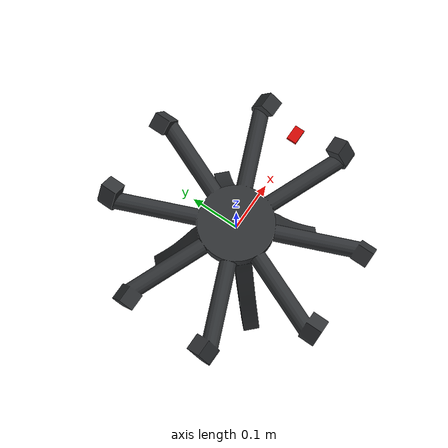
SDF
<?xml version="1.0" encoding="UTF-8"?>
<sdf version="1.9"><model name="planar_octo_base"><self_collide>false</self_collide><static>false</static>
  <link name="base_link">
    <inertial><mass>1.460</mass><inertia><ixx>0.024068</ixx><ixy>-0.000000</ixy><ixz>0.000000</ixz><iyy>0.024067</iyy><iyz>-0.000000</iyz><izz>0.039599</izz></inertia></inertial><gravity>true</gravity>
    <visual name="cad_stationary_assembly"><geometry><mesh><uri>model://planar_octo_base/meshes/stationary_assembly.stl</uri></mesh></geometry><material><ambient>0.10 0.105 0.11 1</ambient><diffuse>0.19 0.20 0.21 1</diffuse><specular>0.32 0.32 0.32 1</specular></material></visual>
    <visual name="front_marker"><pose>0.200 0 0.0638 0 0 0</pose><geometry><box><size>0.030 0.020 0.006</size></box></geometry><material><ambient>0.45 0.02 0.015 1</ambient><diffuse>0.85 0.04 0.025 1</diffuse></material></visual>
    <collision name="body_collision"><pose>0 0 0.0299 0 0 0</pose><geometry><cylinder><radius>0.2475</radius><length>0.0598</length></cylinder></geometry></collision>
    <collision name="landing_gear_collision"><pose>0 0 -0.1745 0 0 0</pose><geometry><cylinder><radius>0.1354</radius><length>0.010</length></cylinder></geometry></collision>
    <sensor name="air_pressure_sensor" type="air_pressure"><always_on>1</always_on><update_rate>50</update_rate><air_pressure><pressure><noise type="gaussian"><mean>0</mean><stddev>3</stddev></noise></pressure></air_pressure></sensor>
    <sensor name="magnetometer_sensor" type="magnetometer"><always_on>1</always_on><update_rate>100</update_rate><magnetometer><x><noise type="gaussian"><stddev>0.0001</stddev></noise></x><y><noise type="gaussian"><stddev>0.0001</stddev></noise></y><z><noise type="gaussian"><stddev>0.0001</stddev></noise></z></magnetometer></sensor>
    <sensor name="imu_sensor" type="imu"><always_on>1</always_on><update_rate>250</update_rate><imu><angular_velocity><x><noise type="gaussian"><mean>0</mean><stddev>0.0008726646</stddev></noise></x><y><noise type="gaussian"><mean>0</mean><stddev>0.0008726646</stddev></noise></y><z><noise type="gaussian"><mean>0</mean><stddev>0.0008726646</stddev></noise></z></angular_velocity><linear_acceleration><x><noise type="gaussian"><mean>0</mean><stddev>0.00637</stddev></noise></x><y><noise type="gaussian"><mean>0</mean><stddev>0.00637</stddev></noise></y><z><noise type="gaussian"><mean>0</mean><stddev>0.00686</stddev></noise></z></linear_acceleration></imu></sensor>
    <sensor name="navsat_sensor" type="navsat"><always_on>1</always_on><update_rate>30</update_rate></sensor>
  </link>
</model></sdf>
